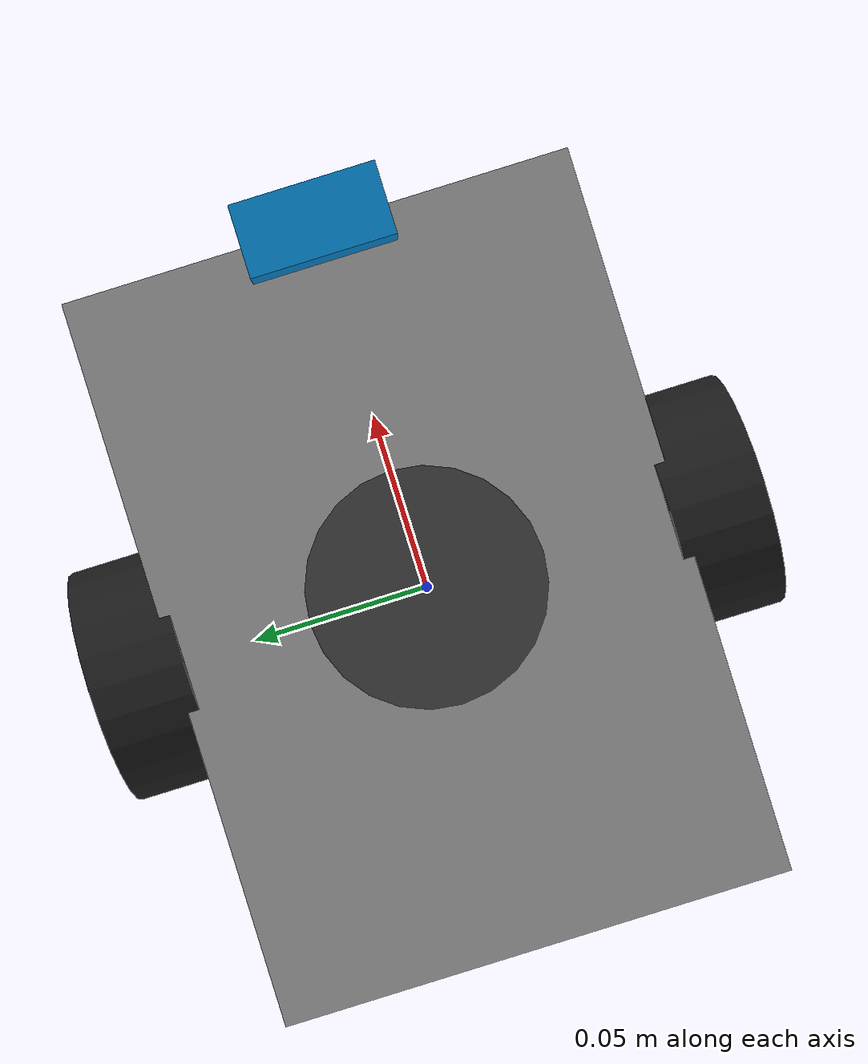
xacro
<?xml version="1.0"?>
<robot name="vision_bot" xmlns:xacro="http://www.ros.org/wiki/xacro">

  <xacro:property name="chassis_length" value="0.20"/>
  <xacro:property name="chassis_width" value="0.14"/>
  <xacro:property name="chassis_height" value="0.06"/>
  <xacro:property name="wheel_radius" value="0.033"/>
  <xacro:property name="wheel_width" value="0.026"/>
  <xacro:property name="wheel_separation" value="0.16"/>

  <xacro:property name="wheel_separation_effective" value="${wheel_separation + wheel_width}"/>

  <!-- ===== v1 rover (copied from vision_bot.urdf.xacro) ===== -->

  <link name="base_link">
    <visual>
      <geometry><box size="${chassis_length} ${chassis_width} ${chassis_height}"/></geometry>
      <material name="grey"><color rgba="0.5 0.5 0.5 1"/></material>
    </visual>
    <collision>
      <geometry><box size="${chassis_length} ${chassis_width} ${chassis_height}"/></geometry>
    </collision>
    <inertial>
      <mass value="1.2"/>
      <inertia ixx="0.01" ixy="0" ixz="0" iyy="0.01" iyz="0" izz="0.01"/>
    </inertial>
  </link>

  <xacro:macro name="wheel" params="prefix y_offset">
    <link name="${prefix}_wheel">
      <visual>
        <origin rpy="1.5708 0 0"/>
        <geometry><cylinder radius="${wheel_radius}" length="${wheel_width}"/></geometry>
        <material name="black"><color rgba="0.1 0.1 0.1 1"/></material>
      </visual>
      <collision>
        <origin rpy="1.5708 0 0"/>
        <geometry><cylinder radius="${wheel_radius}" length="${wheel_width}"/></geometry>
      </collision>
      <inertial>
        <mass value="0.1"/>
        <inertia ixx="0.0005" ixy="0" ixz="0" iyy="0.0005" iyz="0" izz="0.0005"/>
      </inertial>
    </link>
    <joint name="${prefix}_wheel_joint" type="continuous">
      <parent link="base_link"/>
      <child link="${prefix}_wheel"/>
      <origin xyz="0 ${y_offset} 0" rpy="0 0 0"/>
      <axis xyz="0 1 0"/>
    </joint>
  </xacro:macro>

  <xacro:wheel prefix="left" y_offset="${wheel_separation/2}"/>
  <xacro:wheel prefix="right" y_offset="${-wheel_separation/2}"/>

  <link name="caster_wheel">
    <visual><geometry><sphere radius="0.015"/></geometry></visual>
    <collision><geometry><sphere radius="0.015"/></geometry></collision>
    <inertial>
      <mass value="0.05"/>
      <inertia ixx="0.0001" ixy="0" ixz="0" iyy="0.0001" iyz="0" izz="0.0001"/>
    </inertial>
  </link>
  <joint name="caster_joint" type="fixed">
    <parent link="base_link"/>
    <child link="caster_wheel"/>
    <origin xyz="-0.08 0 ${-(wheel_radius - 0.015)}" rpy="0 0 0"/>
  </joint>

  <gazebo reference="caster_wheel">
    <mu1>0.01</mu1>
    <mu2>0.01</mu2>
  </gazebo>

  <!-- Camera (v1 line following). with_camera:=false drops it, and its
       rendering cost, for the two-robot setup. -->
  <xacro:arg name="with_camera" default="true"/>
  <xacro:if value="$(arg with_camera)">
  <link name="camera_link">
    <visual><geometry><box size="0.02 0.04 0.02"/></geometry></visual>
  </link>
  <joint name="camera_joint" type="fixed">
    <parent link="base_link"/>
    <child link="camera_link"/>
    <origin xyz="0.10 0 0.03" rpy="0 0 0"/>
  </joint>

  <gazebo reference="camera_link">
    <sensor type="camera" name="camera">
      <update_rate>30.0</update_rate>
      <camera>
        <horizontal_fov>1.3</horizontal_fov>
        <image><width>640</width><height>480</height><format>R8G8B8</format></image>
        <clip><near>0.02</near><far>10</far></clip>
      </camera>
      <plugin name="camera_controller" filename="libgazebo_ros_camera.so">
        <ros>
          <remapping>image_raw:=/camera/image_raw</remapping>
        </ros>
        <frame_name>camera_link</frame_name>
      </plugin>
    </sensor>
  </gazebo>
  </xacro:if>

  <!-- ===== v2 additions ===== -->

  <link name="lidar_link">
    <visual>
      <geometry><cylinder radius="0.03" length="0.04"/></geometry>
      <material name="dark"><color rgba="0.2 0.2 0.2 1"/></material>
    </visual>
  </link>
  <joint name="lidar_joint" type="fixed">
    <parent link="base_link"/>
    <child link="lidar_link"/>
    <origin xyz="0 0 0.05" rpy="0 0 0"/>
  </joint>

  <gazebo reference="lidar_link">
    <!-- type "ray" is the CPU ray sensor: works headless, no GPU needed. -->
    <sensor type="ray" name="lidar">
      <always_on>true</always_on>
      <visualize>false</visualize>
      <update_rate>10</update_rate>
      <ray>
        <scan>
          <horizontal>
            <samples>360</samples>
            <resolution>1</resolution>
            <min_angle>0.0</min_angle>
            <max_angle>6.28</max_angle>
          </horizontal>
        </scan>
        <range>
          <min>0.12</min>
          <max>8.0</max>
          <resolution>0.01</resolution>
        </range>
        <noise>
          <type>gaussian</type>
          <mean>0.0</mean>
          <stddev>0.01</stddev>
        </noise>
      </ray>
      <plugin name="lidar_controller" filename="libgazebo_ros_ray_sensor.so">
        <ros>
          <remapping>~/out:=scan</remapping>
        </ros>
        <output_type>sensor_msgs/LaserScan</output_type>
        <frame_name>lidar_link</frame_name>
      </plugin>
    </sensor>
  </gazebo>

  <!-- IMU at the base_link origin. Noise values are the TurtleBot3
       simulation defaults; the EKF (Task 2) fuses only its yaw rate. -->
  <link name="imu_link"/>
  <joint name="imu_joint" type="fixed">
    <parent link="base_link"/>
    <child link="imu_link"/>
    <origin xyz="0 0 0" rpy="0 0 0"/>
  </joint>

  <gazebo reference="imu_link">
    <sensor type="imu" name="imu">
      <always_on>true</always_on>
      <update_rate>50</update_rate>
      <imu>
        <angular_velocity>
          <x><noise type="gaussian"><mean>0.0</mean><stddev>2e-4</stddev></noise></x>
          <y><noise type="gaussian"><mean>0.0</mean><stddev>2e-4</stddev></noise></y>
          <z><noise type="gaussian"><mean>0.0</mean><stddev>2e-4</stddev></noise></z>
        </angular_velocity>
        <linear_acceleration>
          <x><noise type="gaussian"><mean>0.0</mean><stddev>1.7e-2</stddev></noise></x>
          <y><noise type="gaussian"><mean>0.0</mean><stddev>1.7e-2</stddev></noise></y>
          <z><noise type="gaussian"><mean>0.0</mean><stddev>1.7e-2</stddev></noise></z>
        </linear_acceleration>
      </imu>
      <plugin name="imu_plugin" filename="libgazebo_ros_imu_sensor.so">
        <ros>
          <remapping>~/out:=imu</remapping>
        </ros>
        <initial_orientation_as_reference>false</initial_orientation_as_reference>
        <frame_name>imu_link</frame_name>
      </plugin>
    </sensor>
  </gazebo>

  <gazebo>
    <plugin name="diff_drive" filename="libgazebo_ros_diff_drive.so">
      <left_joint>left_wheel_joint</left_joint>
      <right_joint>right_wheel_joint</right_joint>
      <wheel_separation>${wheel_separation_effective}</wheel_separation>
      <wheel_diameter>${wheel_radius*2}</wheel_diameter>
      <command_topic>cmd_vel</command_topic>
      <odometry_topic>odom</odometry_topic>
      <robot_base_frame>base_link</robot_base_frame>
      <odometry_frame>odom</odometry_frame>
      <odometry_source>0</odometry_source>
      <publish_odom>true</publish_odom>
      <publish_odom_tf>false</publish_odom_tf>
      <publish_wheel_tf>false</publish_wheel_tf>
    </plugin>

    <!-- Wheel joint positions for robot_state_publisher, so it (not the
         drive plugin) owns base_link -> left_wheel / right_wheel. -->
    <plugin name="joint_state_publisher" filename="libgazebo_ros_joint_state_publisher.so">
      <update_rate>30</update_rate>
      <joint_name>left_wheel_joint</joint_name>
      <joint_name>right_wheel_joint</joint_name>
    </plugin>

    <plugin name="ground_truth" filename="libgazebo_ros_p3d.so">
      <ros>
        <remapping>odom:=ground_truth/pose</remapping>
      </ros>
      <body_name>base_link</body_name>
      <frame_name>world</frame_name>
      <update_rate>50</update_rate>
    </plugin>
  </gazebo>

</robot>
